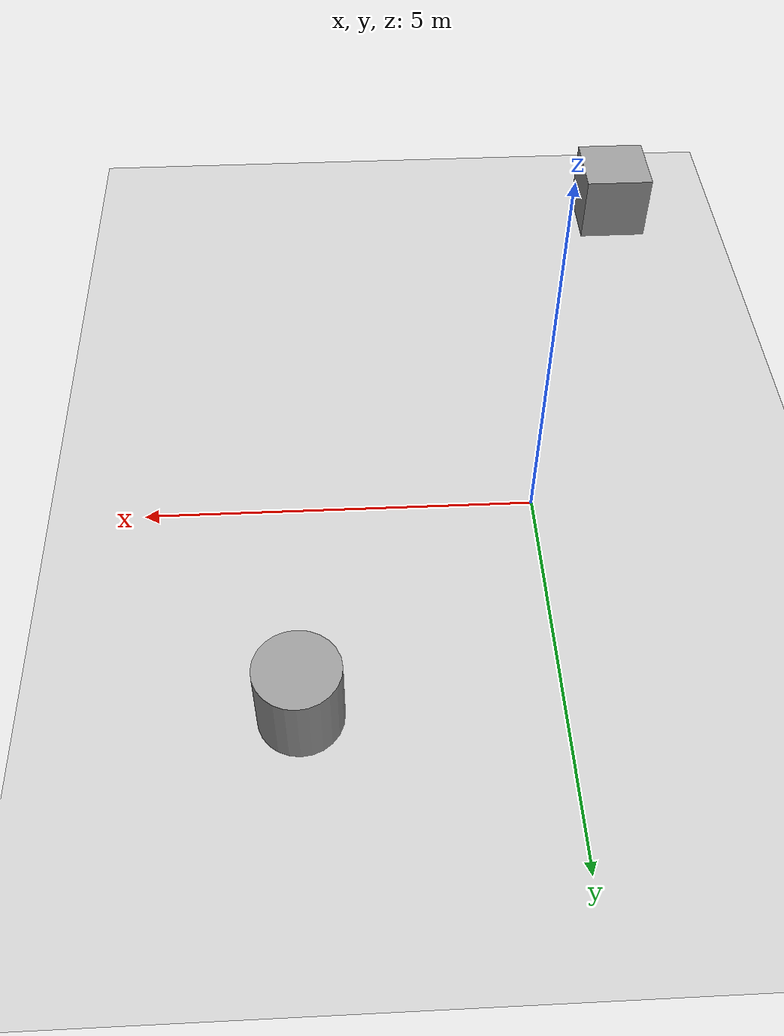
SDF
<sdf version="1.4">
 <world name="default">
  <light name="mysun" type="directional">
   <pose>0 0 10 0 -0 0</pose>
   <diffuse>0.5 0.5 0.5 1</diffuse>
   <specular>0.1 0.1 0.1 1</specular>
   <attenuation>
    <range>20</range>
    <constant>0.5</constant>
    <linear>0.01</linear>
    <quadratic>0.00</quadratic>
   </attenuation>
   <direction>0.1 0.1 -1.0</direction>
  </light>
  <model name="ground_plane">
   <static>1</static>
   <link name="link">
    <collision name="collision">
     <geometry><plane><normal>0 0 1</normal><size>100 100</size></plane></geometry>
     <surface><friction><ode><mu>100</mu><mu2>50</mu2></ode></friction></surface>
    </collision>
    <visual name="visual">
     <cast_shadows>0</cast_shadows>
     <geometry><plane><normal>0 0 1</normal><size>100 100</size></plane></geometry>
     <material>
      <script><uri>file://media/materials/scripts/gazebo.material</uri><name>Gazebo/Grey</name></script>
     </material>
    </visual>
    <velocity_decay><linear>0</linear><angular>0</angular></velocity_decay>
   </link>
  </model>
  <physics type="ode">
   <max_step_size>0.001</max_step_size>
   <real_time_factor>1</real_time_factor>
   <real_time_update_rate>1000</real_time_update_rate>
   <gravity>0 0 -9.8</gravity>
  </physics>
  <scene><ambient>0.4 0.4 0.4 1</ambient><background>0.7 0.7 0.7 1</background><shadows>1</shadows></scene>
  <spherical_coordinates>
   <surface_model>EARTH_WGS84</surface_model>
   <latitude_deg>0</latitude_deg>
   <longitude_deg>0</longitude_deg>
   <elevation>0</elevation>
   <heading_deg>0</heading_deg>
  </spherical_coordinates>
  <model name="unit_box_1">
   <pose>-2 -6 0.5 0 -0 0</pose>
   <link name="link">
    <inertial>
     <mass>1</mass>
     <inertia><ixx>1</ixx><ixy>0</ixy><ixz>0</ixz><iyy>1</iyy><iyz>0</iyz><izz>1</izz></inertia>
    </inertial>
    <collision name="collision"><geometry><box><size>1 1 1</size></box></geometry></collision>
    <visual name="visual">
     <geometry><box><size>1 1 1</size></box></geometry>
     <material>
      <script><uri>file://media/materials/scripts/gazebo.material</uri><name>Gazebo/Grey</name></script>
     </material>
    </visual>
    <velocity_decay><linear>0</linear><angular>0</angular></velocity_decay>
   </link>
   <static>0</static>
  </model>
  <model name="unit_cylinder_1">
   <pose>3 3 0.499998 -0 -0 -0</pose>
   <link name="link">
    <inertial>
     <mass>1</mass>
     <inertia><ixx>1</ixx><ixy>0</ixy><ixz>0</ixz><iyy>1</iyy><iyz>0</iyz><izz>1</izz></inertia>
    </inertial>
    <collision name="collision">
     <geometry><cylinder><radius>0.5</radius><length>1</length></cylinder></geometry>
    </collision>
    <visual name="visual">
     <geometry><cylinder><radius>0.5</radius><length>1</length></cylinder></geometry>
     <material>
      <script><uri>file://media/materials/scripts/gazebo.material</uri><name>Gazebo/Grey</name></script>
     </material>
    </visual>
    <velocity_decay><linear>0</linear><angular>0</angular></velocity_decay>
   </link>
   <static>0</static>
  </model>
 </world>
</sdf>
